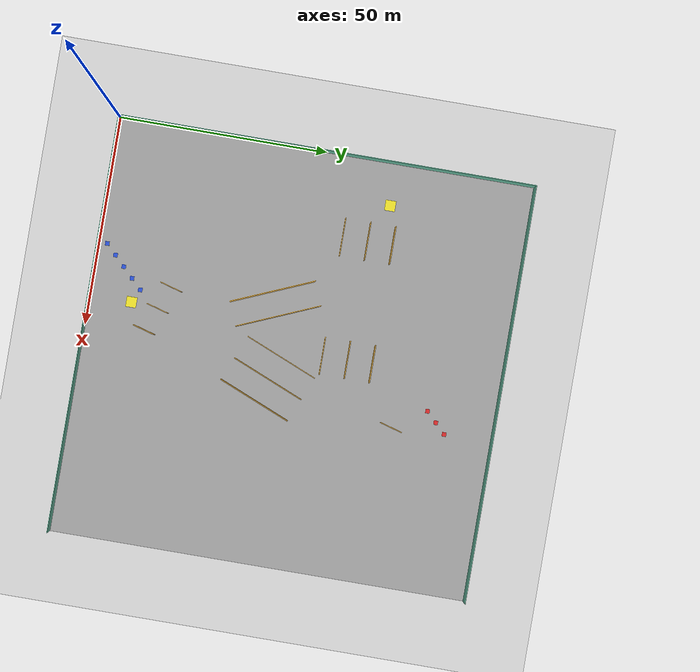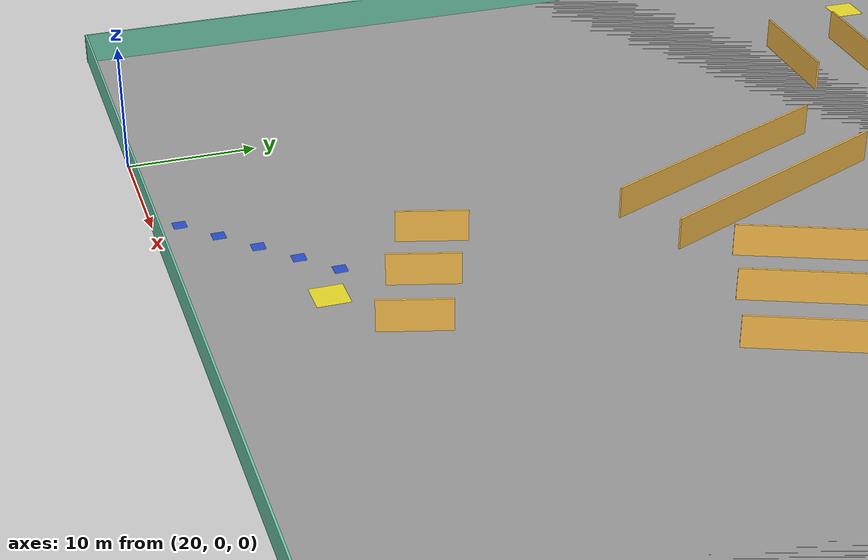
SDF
<sdf version="1.6">
 <world name="default">
  <model name="ground_plane">
   <pose>50 50 0 0 -0 0</pose>
   <static>1</static>
   <link name="link">
    <collision name="collision">
     <geometry><plane><normal>0 0 1</normal><size>100 100</size></plane></geometry>
     <surface><friction><ode><mu>100</mu><mu2>50</mu2></ode></friction></surface>
    </collision>
    <visual name="visual">
     <cast_shadows>0</cast_shadows>
     <geometry><plane><normal>0 0 1</normal><size>100 100</size></plane></geometry>
     <material>
      <script><uri>file://media/materials/scripts/gazebo.material</uri><name>Gazebo/Grey</name></script>
     </material>
    </visual>
   </link>
  </model>
  <model name="FF">
   <pose>50 0 0 0 -0 1.57</pose>
   <link name="Wall_4">
    <collision name="Wall_4_Collision">
     <geometry><box><size>100.15 0.15 2.5</size></box></geometry>
     <pose>0 0 1.25 0 -0 0</pose>
    </collision>
    <visual name="Wall_4_Visual">
     <pose>0 0 1.25 0 -0 0</pose>
     <geometry><box><size>100.15 0.15 2.5</size></box></geometry>
     <material>
      <script><uri>file://media/materials/scripts/gazebo.material</uri><name>Gazebo/Grey</name></script>
      <ambient>0.435294 0.796078 0.67451 1</ambient>
     </material>
    </visual>
    <pose>0 -2e-06 0 0 -0 1.5708</pose>
   </link>
   <static>1</static>
  </model>
  <model name="FF_clone">
   <pose>0 50 0 0 -0 0</pose>
   <link name="Wall_4">
    <collision name="Wall_4_Collision">
     <geometry><box><size>100.15 0.15 2.5</size></box></geometry>
     <pose>0 0 1.25 0 -0 0</pose>
    </collision>
    <visual name="Wall_4_Visual">
     <pose>0 0 1.25 0 -0 0</pose>
     <geometry><box><size>100.15 0.15 2.5</size></box></geometry>
     <material>
      <script><uri>file://media/materials/scripts/gazebo.material</uri><name>Gazebo/Grey</name></script>
      <ambient>0.435294 0.796078 0.67451 1</ambient>
     </material>
    </visual>
    <pose>0 -2e-06 0 0 -0 1.5708</pose>
   </link>
   <static>1</static>
  </model>
  <model name="FF_clone_0">
   <pose>50 100 0 0 -0 1.57</pose>
   <link name="Wall_4">
    <collision name="Wall_4_Collision">
     <geometry><box><size>100.15 0.15 2.5</size></box></geometry>
     <pose>0 0 1.25 0 -0 0</pose>
    </collision>
    <visual name="Wall_4_Visual">
     <pose>0 0 1.25 0 -0 0</pose>
     <geometry><box><size>100.15 0.15 2.5</size></box></geometry>
     <material>
      <script><uri>file://media/materials/scripts/gazebo.material</uri><name>Gazebo/Grey</name></script>
      <ambient>0.435294 0.796078 0.67451 1</ambient>
     </material>
    </visual>
    <pose>0 -2e-06 0 0 -0 1.5708</pose>
   </link>
   <static>1</static>
  </model>
  <model name="Tunnel1_clone_0">
   <pose>48 57 0 0 -0 0</pose>
   <link name="Wall_2">
    <collision name="Wall_2_Collision">
     <geometry><box><size>9.09 0.15 2.5</size></box></geometry>
     <pose>0 0 1.25 0 -0 0</pose>
    </collision>
    <visual name="Wall_2_Visual">
     <pose>0 0 1.25 0 -0 0</pose>
     <geometry><box><size>9.09 0.15 2.5</size></box></geometry>
     <material>
      <script><uri>file://media/materials/scripts/gazebo.material</uri><name>Gazebo/Grey</name></script>
      <ambient>1 0.764706 0.305882 1</ambient>
     </material>
    </visual>
   </link>
   <static>1</static>
  </model>
  <model name="Tunnel1_clone_1">
   <pose>48 63 0 0 -0 0</pose>
   <link name="Wall_2">
    <collision name="Wall_2_Collision">
     <geometry><box><size>9.09 0.15 2.5</size></box></geometry>
     <pose>0 0 1.25 0 -0 0</pose>
    </collision>
    <visual name="Wall_2_Visual">
     <pose>0 0 1.25 0 -0 0</pose>
     <geometry><box><size>9.09 0.15 2.5</size></box></geometry>
     <material>
      <script><uri>file://media/materials/scripts/gazebo.material</uri><name>Gazebo/Grey</name></script>
      <ambient>1 0.764706 0.305882 1</ambient>
     </material>
    </visual>
   </link>
   <static>1</static>
  </model>
  <model name="Tunnel1_clone_2">
   <pose>19.47 57 0 0 -0 0</pose>
   <link name="Wall_2">
    <collision name="Wall_2_Collision">
     <geometry><box><size>9.09 0.15 2.5</size></box></geometry>
     <pose>0 0 1.25 0 -0 0</pose>
    </collision>
    <visual name="Wall_2_Visual">
     <pose>0 0 1.25 0 -0 0</pose>
     <geometry><box><size>9.09 0.15 2.5</size></box></geometry>
     <material>
      <script><uri>file://media/materials/scripts/gazebo.material</uri><name>Gazebo/Grey</name></script>
      <ambient>1 0.764706 0.305882 1</ambient>
     </material>
    </visual>
   </link>
   <static>1</static>
  </model>
  <model name="Tunnel1_clone_3">
   <pose>19.47 63 0 0 -0 0</pose>
   <link name="Wall_2">
    <collision name="Wall_2_Collision">
     <geometry><box><size>9.09 0.15 2.5</size></box></geometry>
     <pose>0 0 1.25 0 -0 0</pose>
    </collision>
    <visual name="Wall_2_Visual">
     <pose>0 0 1.25 0 -0 0</pose>
     <geometry><box><size>9.09 0.15 2.5</size></box></geometry>
     <material>
      <script><uri>file://media/materials/scripts/gazebo.material</uri><name>Gazebo/Grey</name></script>
      <ambient>1 0.764706 0.305882 1</ambient>
     </material>
    </visual>
   </link>
   <static>1</static>
  </model>
  <model name="T5">
   <pose>34.9417 42.8179 0 0 -0 0</pose>
   <link name="Wall_10">
    <collision name="Wall_10_Collision">
     <geometry><box><size>20.8796 0.15 2.5</size></box></geometry>
     <pose>0 0 1.25 0 -0 0</pose>
    </collision>
    <visual name="Wall_10_Visual">
     <pose>0 0 1.25 0 -0 0</pose>
     <geometry><box><size>20.8796 0.15 2.5</size></box></geometry>
     <material>
      <script><uri>file://media/materials/scripts/gazebo.material</uri><name>Gazebo/Grey</name></script>
      <ambient>1 0.764706 0.305882 1</ambient>
     </material>
    </visual>
    <pose>0 0 0 0 0 -1.1704</pose>
   </link>
   <static>1</static>
  </model>
  <model name="Tunnel1_clone_3_clone">
   <pose>19.47 69 0 0 -0 0</pose>
   <link name="Wall_2">
    <collision name="Wall_2_Collision">
     <geometry><box><size>9.09 0.15 2.5</size></box></geometry>
     <pose>0 0 1.25 0 -0 0</pose>
    </collision>
    <visual name="Wall_2_Visual">
     <pose>0 0 1.25 0 -0 0</pose>
     <geometry><box><size>9.09 0.15 2.5</size></box></geometry>
     <material>
      <script><uri>file://media/materials/scripts/gazebo.material</uri><name>Gazebo/Grey</name></script>
      <ambient>1 0.764706 0.305882 1</ambient>
     </material>
    </visual>
   </link>
   <static>1</static>
  </model>
  <model name="Tunnel1_clone_3_clone_1">
   <pose>48 69 0 0 -0 0</pose>
   <link name="Wall_2">
    <collision name="Wall_2_Collision">
     <geometry><box><size>9.09 0.15 2.5</size></box></geometry>
     <pose>0 0 1.25 0 -0 0</pose>
    </collision>
    <visual name="Wall_2_Visual">
     <pose>0 0 1.25 0 -0 0</pose>
     <geometry><box><size>9.09 0.15 2.5</size></box></geometry>
     <material>
      <script><uri>file://media/materials/scripts/gazebo.material</uri><name>Gazebo/Grey</name></script>
      <ambient>1 0.764706 0.305882 1</ambient>
     </material>
    </visual>
   </link>
   <static>1</static>
  </model>
  <model name="T2">
   <pose>49.0268 14.3147 0 0 -0 0</pose>
   <link name="Wall_4">
    <collision name="Wall_4_Collision">
     <geometry><box><size>5.34501 0.15 2.5</size></box></geometry>
     <pose>0 0 1.25 0 -0 0</pose>
    </collision>
    <visual name="Wall_4_Visual">
     <pose>0 0 1.25 0 -0 0</pose>
     <geometry><box><size>5.34501 0.15 2.5</size></box></geometry>
     <material>
      <script><uri>file://media/materials/scripts/gazebo.material</uri><name>Gazebo/Grey</name></script>
      <ambient>1 0.764706 0.305882 1</ambient>
     </material>
    </visual>
    <pose>0 0 0 0 -0 1.29593</pose>
   </link>
   <static>1</static>
  </model>
  <model name="T2_clone">
   <pose>43.5 16.65 0 0 -0 0</pose>
   <link name="Wall_4">
    <collision name="Wall_4_Collision">
     <geometry><box><size>5.34501 0.15 2.5</size></box></geometry>
     <pose>0 0 1.25 0 -0 0</pose>
    </collision>
    <visual name="Wall_4_Visual">
     <pose>0 0 1.25 0 -0 0</pose>
     <geometry><box><size>5.34501 0.15 2.5</size></box></geometry>
     <material>
      <script><uri>file://media/materials/scripts/gazebo.material</uri><name>Gazebo/Grey</name></script>
      <ambient>1 0.764706 0.305882 1</ambient>
     </material>
    </visual>
    <pose>0 0 0 0 -0 1.29593</pose>
   </link>
   <static>1</static>
  </model>
  <model name="T2_clone_0">
   <pose>37.9731 18.9853 0 0 -0 0</pose>
   <link name="Wall_4">
    <collision name="Wall_4_Collision">
     <geometry><box><size>5.34501 0.15 2.5</size></box></geometry>
     <pose>0 0 1.25 0 -0 0</pose>
    </collision>
    <visual name="Wall_4_Visual">
     <pose>0 0 1.25 0 -0 0</pose>
     <geometry><box><size>5.34501 0.15 2.5</size></box></geometry>
     <material>
      <script><uri>file://media/materials/scripts/gazebo.material</uri><name>Gazebo/Grey</name></script>
      <ambient>1 0.764706 0.305882 1</ambient>
     </material>
    </visual>
    <pose>0 0 0 0 -0 1.29593</pose>
   </link>
   <static>1</static>
  </model>
  <model name="T2_clone_1">
   <pose>62.0094 75.8502 0 0 -0 0</pose>
   <link name="Wall_4">
    <collision name="Wall_4_Collision">
     <geometry><box><size>5.34501 0.15 2.5</size></box></geometry>
     <pose>0 0 1.25 0 -0 0</pose>
    </collision>
    <visual name="Wall_4_Visual">
     <pose>0 0 1.25 0 -0 0</pose>
     <geometry><box><size>5.34501 0.15 2.5</size></box></geometry>
     <material>
      <script><uri>file://media/materials/scripts/gazebo.material</uri><name>Gazebo/Grey</name></script>
      <ambient>1 0.764706 0.305882 1</ambient>
     </material>
    </visual>
    <pose>0 0 0 0 -0 1.29593</pose>
   </link>
   <static>1</static>
  </model>
  <model name="T4">
   <pose>55.53 45.15 0 0 -0 0</pose>
   <link name="Wall_8">
    <collision name="Wall_8_Collision">
     <geometry><box><size>18.6596 0.15 2.5</size></box></geometry>
     <pose>0 0 1.25 0 -0 0</pose>
    </collision>
    <visual name="Wall_8_Visual">
     <pose>0 0 1.25 0 -0 0</pose>
     <geometry><box><size>18.6596 0.15 2.5</size></box></geometry>
     <material>
      <script><uri>file://media/materials/scripts/gazebo.material</uri><name>Gazebo/Grey</name></script>
      <ambient>1 0.764706 0.305882 1</ambient>
     </material>
    </visual>
    <pose>0 0 0 0 0 -1.96231</pose>
   </link>
   <static>1</static>
  </model>
  <model name="T4_clone">
   <pose>61.0583 42.8179 0 0 -0 0</pose>
   <link name="Wall_8">
    <collision name="Wall_8_Collision">
     <geometry><box><size>18.6596 0.15 2.5</size></box></geometry>
     <pose>0 0 1.25 0 -0 0</pose>
    </collision>
    <visual name="Wall_8_Visual">
     <pose>0 0 1.25 0 -0 0</pose>
     <geometry><box><size>18.6596 0.15 2.5</size></box></geometry>
     <material>
      <script><uri>file://media/materials/scripts/gazebo.material</uri><name>Gazebo/Grey</name></script>
      <ambient>1 0.764706 0.305882 1</ambient>
     </material>
    </visual>
    <pose>0 0 0 0 0 -1.96231</pose>
   </link>
   <static>1</static>
  </model>
  <model name="T4_clone_0">
   <pose>50.0018 47.4821 0 0 -0 0</pose>
   <link name="Wall_8">
    <collision name="Wall_8_Collision">
     <geometry><box><size>18.6596 0.15 2.5</size></box></geometry>
     <pose>0 0 1.25 0 -0 0</pose>
    </collision>
    <visual name="Wall_8_Visual">
     <pose>0 0 1.25 0 -0 0</pose>
     <geometry><box><size>18.6596 0.15 2.5</size></box></geometry>
     <material>
      <script><uri>file://media/materials/scripts/gazebo.material</uri><name>Gazebo/Grey</name></script>
      <ambient>1 0.764706 0.305882 1</ambient>
     </material>
    </visual>
    <pose>0 0 0 0 0 -1.96231</pose>
   </link>
   <static>1</static>
  </model>
  <model name="T5_clone">
   <pose>40.47 45.15 0 0 -0 0</pose>
   <link name="Wall_10">
    <collision name="Wall_10_Collision">
     <geometry><box><size>20.8796 0.15 2.5</size></box></geometry>
     <pose>0 0 1.25 0 -0 0</pose>
    </collision>
    <visual name="Wall_10_Visual">
     <pose>0 0 1.25 0 -0 0</pose>
     <geometry><box><size>20.8796 0.15 2.5</size></box></geometry>
     <material>
      <script><uri>file://media/materials/scripts/gazebo.material</uri><name>Gazebo/Grey</name></script>
      <ambient>1 0.764706 0.305882 1</ambient>
     </material>
    </visual>
    <pose>0 0 0 0 0 -1.1704</pose>
   </link>
   <static>1</static>
  </model>
  <model name="my_objectg3w1">
   <link name="my_box">
    <inertial>
     <mass>1</mass>
     <inertia><ixx>1</ixx><ixy>0</ixy><ixz>0</ixz><iyy>100</iyy><iyz>0</iyz><izz>1</izz></inertia>
    </inertial>
    <collision name="my_box_collision">
     <pose>0 0 1 0 -0 0</pose>
     <geometry><box><size>1 1 0.02</size></box></geometry>
    </collision>
    <visual name="my_box_visual">
     <pose>0 0 1 0 -0 0</pose>
     <geometry><box><size>1 1 0.02</size></box></geometry>
     <material>
      <script><name>Gazebo/Blue</name><uri>file://media/materials/scripts/gazebo.material</uri></script>
     </material>
    </visual>
   </link>
   <pose>39.7996 11.6032 -0.99001 0 -0 0.006757</pose>
  </model>
  <model name="my_objectg3w2">
   <link name="my_box">
    <inertial>
     <mass>1</mass>
     <inertia><ixx>1</ixx><ixy>0</ixy><ixz>0</ixz><iyy>100</iyy><iyz>0</iyz><izz>1</izz></inertia>
    </inertial>
    <collision name="my_box_collision">
     <pose>0 0 1 0 -0 0</pose>
     <geometry><box><size>1 1 0.02</size></box></geometry>
    </collision>
    <visual name="my_box_visual">
     <pose>0 0 1 0 -0 0</pose>
     <geometry><box><size>1 1 0.02</size></box></geometry>
     <material>
      <script><name>Gazebo/Blue</name><uri>file://media/materials/scripts/gazebo.material</uri></script>
     </material>
    </visual>
   </link>
   <pose>37.4 9.2022 -0.99 0 0 -0.002349</pose>
  </model>
  <model name="my_objectg3w3">
   <link name="my_box">
    <inertial>
     <mass>1</mass>
     <inertia><ixx>1</ixx><ixy>0</ixy><ixz>0</ixz><iyy>100</iyy><iyz>0</iyz><izz>1</izz></inertia>
    </inertial>
    <collision name="my_box_collision">
     <pose>0 0 1 0 -0 0</pose>
     <geometry><box><size>1 1 0.02</size></box></geometry>
    </collision>
    <visual name="my_box_visual">
     <pose>0 0 1 0 -0 0</pose>
     <geometry><box><size>1 1 0.02</size></box></geometry>
     <material>
      <script><name>Gazebo/Blue</name><uri>file://media/materials/scripts/gazebo.material</uri></script>
     </material>
    </visual>
   </link>
   <pose>34.9988 6.80263 -0.990002 4e-06 -0 0.00201</pose>
  </model>
  <model name="my_objectg3w4">
   <link name="my_box">
    <inertial>
     <mass>1</mass>
     <inertia><ixx>1</ixx><ixy>0</ixy><ixz>0</ixz><iyy>100</iyy><iyz>0</iyz><izz>1</izz></inertia>
    </inertial>
    <collision name="my_box_collision">
     <pose>0 0 1 0 -0 0</pose>
     <geometry><box><size>1 1 0.02</size></box></geometry>
    </collision>
    <visual name="my_box_visual">
     <pose>0 0 1 0 -0 0</pose>
     <geometry><box><size>1 1 0.02</size></box></geometry>
     <material>
      <script><name>Gazebo/Blue</name><uri>file://media/materials/scripts/gazebo.material</uri></script>
     </material>
    </visual>
   </link>
   <pose>32.6029 4.40214 -0.990062 -5e-06 -0 0.006704</pose>
  </model>
  <model name="my_objectg3w5">
   <link name="my_box">
    <inertial>
     <mass>1</mass>
     <inertia><ixx>1</ixx><ixy>0</ixy><ixz>0</ixz><iyy>100</iyy><iyz>0</iyz><izz>1</izz></inertia>
    </inertial>
    <collision name="my_box_collision">
     <pose>0 0 1 0 -0 0</pose>
     <geometry><box><size>1 1 0.02</size></box></geometry>
    </collision>
    <visual name="my_box_visual">
     <pose>0 0 1 0 -0 0</pose>
     <geometry><box><size>1 1 0.02</size></box></geometry>
     <material>
      <script><name>Gazebo/Blue</name><uri>file://media/materials/scripts/gazebo.material</uri></script>
     </material>
    </visual>
   </link>
   <pose>30.2001 2.00282 -0.990081 1e-06 -0 0.005524</pose>
  </model>
  <model name="my_objectg3w1e">
   <link name="my_box">
    <inertial>
     <mass>1</mass>
     <inertia><ixx>1</ixx><ixy>0</ixy><ixz>0</ixz><iyy>100</iyy><iyz>0</iyz><izz>1</izz></inertia>
    </inertial>
    <collision name="my_box_collision">
     <pose>0 0 1 0 -0 0</pose>
     <geometry><box><size>1 1 0.02</size></box></geometry>
    </collision>
    <visual name="my_box_visual">
     <pose>0 0 1 0 -0 0</pose>
     <geometry><box><size>1 1 0.02</size></box></geometry>
     <material>
      <script><name>Gazebo/Red</name><uri>file://media/materials/scripts/gazebo.material</uri></script>
     </material>
    </visual>
   </link>
   <pose>56.7998 84 -0.990001 -2e-06 -0 -0.000546</pose>
  </model>
  <model name="my_objectg3w2e">
   <link name="my_box">
    <inertial>
     <mass>1</mass>
     <inertia><ixx>1</ixx><ixy>0</ixy><ixz>0</ixz><iyy>100</iyy><iyz>0</iyz><izz>1</izz></inertia>
    </inertial>
    <collision name="my_box_collision">
     <pose>0 0 1 0 -0 0</pose>
     <geometry><box><size>1 1 0.02</size></box></geometry>
    </collision>
    <visual name="my_box_visual">
     <pose>0 0 1 0 -0 0</pose>
     <geometry><box><size>1 1 0.02</size></box></geometry>
     <material>
      <script><name>Gazebo/Red</name><uri>file://media/materials/scripts/gazebo.material</uri></script>
     </material>
    </visual>
   </link>
   <pose>59.1998 86.4 -0.990001 2e-06 -0 -4e-06</pose>
  </model>
  <model name="my_objectg3w3e">
   <link name="my_box">
    <inertial>
     <mass>1</mass>
     <inertia><ixx>1</ixx><ixy>0</ixy><ixz>0</ixz><iyy>100</iyy><iyz>0</iyz><izz>1</izz></inertia>
    </inertial>
    <collision name="my_box_collision">
     <pose>0 0 1 0 -0 0</pose>
     <geometry><box><size>1 1 0.02</size></box></geometry>
    </collision>
    <visual name="my_box_visual">
     <pose>0 0 1 0 -0 0</pose>
     <geometry><box><size>1 1 0.02</size></box></geometry>
     <material>
      <script><name>Gazebo/Red</name><uri>file://media/materials/scripts/gazebo.material</uri></script>
     </material>
    </visual>
   </link>
   <pose>61.6 88.8 -0.990001 -2e-06 -0 -0.000431</pose>
  </model>
  <model name="my_objectT2">
   <link name="my_box">
    <inertial>
     <mass>1</mass>
     <inertia><ixx>1</ixx><ixy>0</ixy><ixz>0</ixz><iyy>100</iyy><iyz>0</iyz><izz>1</izz></inertia>
    </inertial>
    <collision name="my_box_collision">
     <pose>0 0 1 0 -0 0</pose>
     <geometry><box><size>2.5 2.5 0.02</size></box></geometry>
    </collision>
    <visual name="my_box_visual">
     <pose>0 0 1 0 -0 0</pose>
     <geometry><box><size>2.5 2.5 0.02</size></box></geometry>
     <material>
      <script><name>Gazebo/Yellow</name><uri>file://media/materials/scripts/gazebo.material</uri></script>
     </material>
    </visual>
   </link>
   <pose>43 9.99983 -0.99 0 -0 0.000234</pose>
  </model>
  <model name="my_objectT3">
   <link name="my_box">
    <inertial>
     <mass>1</mass>
     <inertia><ixx>1</ixx><ixy>0</ixy><ixz>0</ixz><iyy>100</iyy><iyz>0</iyz><izz>1</izz></inertia>
    </inertial>
    <collision name="my_box_collision">
     <pose>0 0 1 0 -0 0</pose>
     <geometry><box><size>2.5 2.5 0.02</size></box></geometry>
    </collision>
    <visual name="my_box_visual">
     <pose>0 0 1 0 -0 0</pose>
     <geometry><box><size>2.5 2.5 0.02</size></box></geometry>
     <material>
      <script><name>Gazebo/Yellow</name><uri>file://media/materials/scripts/gazebo.material</uri></script>
     </material>
    </visual>
   </link>
   <pose>10.0006 66.9988 -0.990005 3e-06 -0 -0.000577</pose>
  </model>
  <model name="floor2_0">
   <link name="Wall_0">
    <inertial>
     <mass>1</mass>
     <inertia><ixx>1</ixx><ixy>0</ixy><ixz>0</ixz><iyy>1</iyy><iyz>0</iyz><izz>1</izz></inertia>
    </inertial>
    <visual name="ModelPreview_1::Wall_0::visual_1">
     <pose>0 0 0.01 0 -0 0</pose>
     <geometry><box><size>100 99.99 0.01</size></box></geometry>
     <material>
      <script><uri>file://media/materials/scripts/gazebo.material</uri><name>Gazebo/Grey</name></script>
      <ambient>1 1 1 1</ambient>
      <diffuse>0.7 0.7 0.7 1</diffuse>
      <specular>0.01 0.01 0.01 1</specular>
      <emissive>0 0 0 1</emissive>
      <shader type="vertex"><normal_map>__default__</normal_map></shader>
     </material>
    </visual>
    <visual name="Wall_0_Visual">
     <pose>0 0 0.01 0 -0 0</pose>
     <geometry><box><size>100 100 0.01</size></box></geometry>
     <material>
      <script><uri>file://media/materials/scripts/gazebo.material</uri><name>Gazebo/Grey</name></script>
      <ambient>1 1 1 1</ambient>
      <diffuse>0.7 0.7 0.7 1</diffuse>
      <specular>0.01 0.01 0.01 1</specular>
      <emissive>0 0 0 1</emissive>
      <shader type="vertex"><normal_map>__default__</normal_map></shader>
     </material>
    </visual>
   </link>
   <static>1</static>
   <pose>50 50 0 0 -0 0</pose>
  </model>
 </world>
</sdf>
